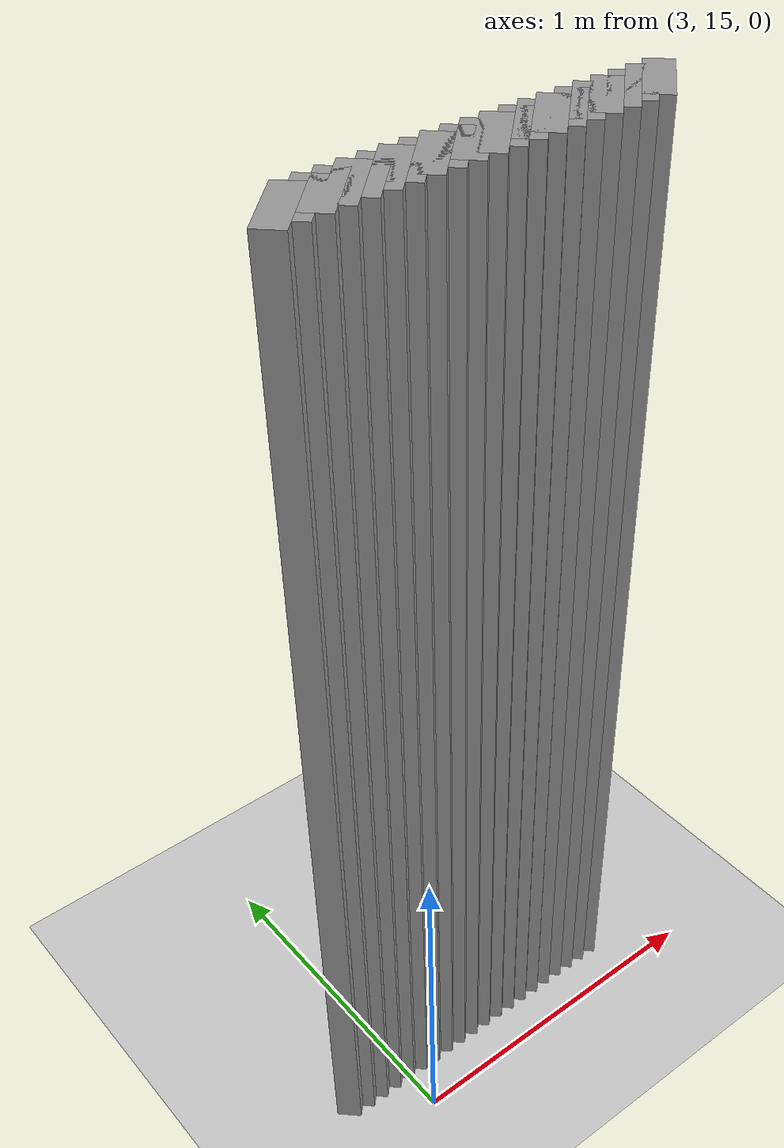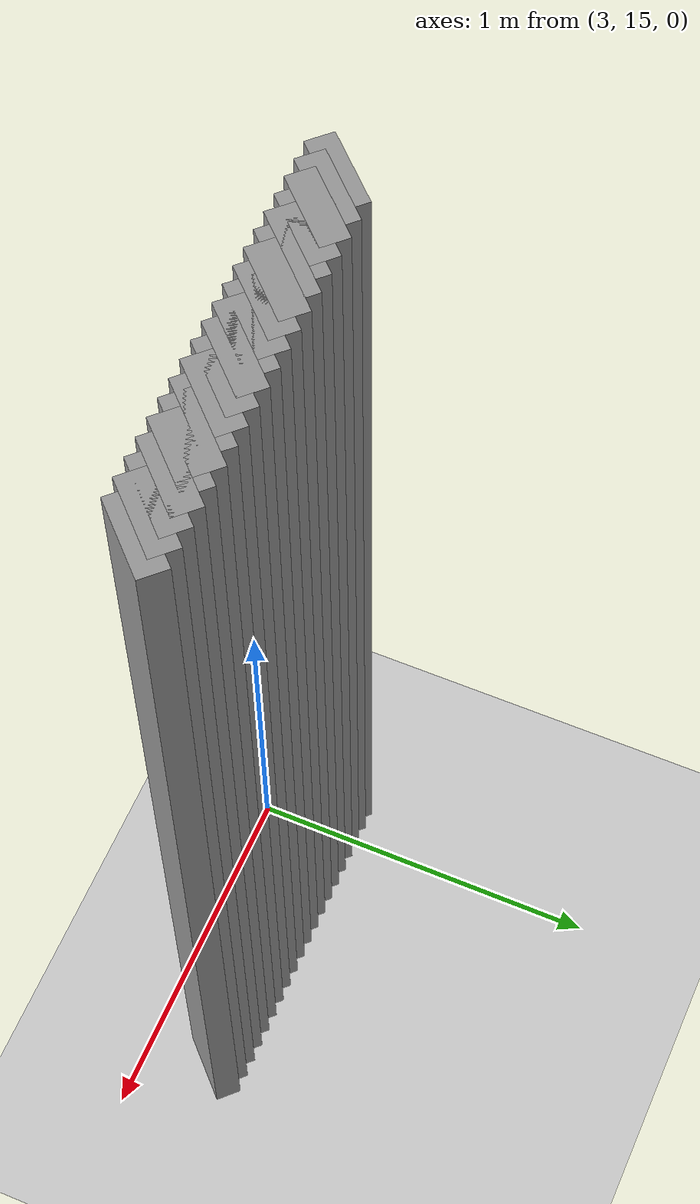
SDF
<sdf version="1.5">
 <world name="default">
  <include><uri>model://ground_plane</uri></include>
  <include><uri>model://sun</uri></include>
  <model name="grey_wall_1477">
   <static>1</static>
   <link name="link">
    <pose>2.85 15.2  1.4 0 0 -0.785398163397</pose>
    <collision name="collision"><geometry><box><size>0.0707106781187 .2  2.8</size></box></geometry></collision>
    <visual name="visual">
     <cast_shadows>0</cast_shadows>
     <geometry><box><size>0.0707106781187 .2  2.8</size></box></geometry>
     <material>
      <script>
       <uri>model://grey_wall/materials/scripts</uri>
       <uri>model://grey_wall/materials/textures</uri>
       <name>vrc/grey_wall</name>
      </script>
     </material>
    </visual>
   </link>
  </model>
  <model name="grey_wall_1478">
   <static>1</static>
   <link name="link">
    <pose>2.9 15.2  1.4 0 0 -0.785398163397</pose>
    <collision name="collision"><geometry><box><size>0.0707106781187 .2  2.8</size></box></geometry></collision>
    <visual name="visual">
     <cast_shadows>0</cast_shadows>
     <geometry><box><size>0.0707106781187 .2  2.8</size></box></geometry>
     <material>
      <script>
       <uri>model://grey_wall/materials/scripts</uri>
       <uri>model://grey_wall/materials/textures</uri>
       <name>vrc/grey_wall</name>
      </script>
     </material>
    </visual>
   </link>
  </model>
  <model name="grey_wall_1479">
   <static>1</static>
   <link name="link">
    <pose>2.95 15.2  1.4 0 0 -0.785398163397</pose>
    <collision name="collision"><geometry><box><size>0.0707106781187 .2  2.8</size></box></geometry></collision>
    <visual name="visual">
     <cast_shadows>0</cast_shadows>
     <geometry><box><size>0.0707106781187 .2  2.8</size></box></geometry>
     <material>
      <script>
       <uri>model://grey_wall/materials/scripts</uri>
       <uri>model://grey_wall/materials/textures</uri>
       <name>vrc/grey_wall</name>
      </script>
     </material>
    </visual>
   </link>
  </model>
  <model name="grey_wall_1480">
   <static>1</static>
   <link name="link">
    <pose>3.0 15.2  1.4 0 0 -0.785398163397</pose>
    <collision name="collision"><geometry><box><size>0.0707106781187 .2  2.8</size></box></geometry></collision>
    <visual name="visual">
     <cast_shadows>0</cast_shadows>
     <geometry><box><size>0.0707106781187 .2  2.8</size></box></geometry>
     <material>
      <script>
       <uri>model://grey_wall/materials/scripts</uri>
       <uri>model://grey_wall/materials/textures</uri>
       <name>vrc/grey_wall</name>
      </script>
     </material>
    </visual>
   </link>
  </model>
  <model name="grey_wall_1481">
   <static>1</static>
   <link name="link">
    <pose>3.05 15.2  1.4 0 0 -0.785398163397</pose>
    <collision name="collision"><geometry><box><size>0.0707106781187 .2  2.8</size></box></geometry></collision>
    <visual name="visual">
     <cast_shadows>0</cast_shadows>
     <geometry><box><size>0.0707106781187 .2  2.8</size></box></geometry>
     <material>
      <script>
       <uri>model://grey_wall/materials/scripts</uri>
       <uri>model://grey_wall/materials/textures</uri>
       <name>vrc/grey_wall</name>
      </script>
     </material>
    </visual>
   </link>
  </model>
  <model name="grey_wall_1482">
   <static>1</static>
   <link name="link">
    <pose>3.1 15.2  1.4 0 0 -0.785398163397</pose>
    <collision name="collision"><geometry><box><size>0.0707106781187 .2  2.8</size></box></geometry></collision>
    <visual name="visual">
     <cast_shadows>0</cast_shadows>
     <geometry><box><size>0.0707106781187 .2  2.8</size></box></geometry>
     <material>
      <script>
       <uri>model://grey_wall/materials/scripts</uri>
       <uri>model://grey_wall/materials/textures</uri>
       <name>vrc/grey_wall</name>
      </script>
     </material>
    </visual>
   </link>
  </model>
  <model name="grey_wall_1483">
   <static>1</static>
   <link name="link">
    <pose>3.15 15.2  1.4 0 0 -0.785398163397</pose>
    <collision name="collision"><geometry><box><size>0.0707106781187 .2  2.8</size></box></geometry></collision>
    <visual name="visual">
     <cast_shadows>0</cast_shadows>
     <geometry><box><size>0.0707106781187 .2  2.8</size></box></geometry>
     <material>
      <script>
       <uri>model://grey_wall/materials/scripts</uri>
       <uri>model://grey_wall/materials/textures</uri>
       <name>vrc/grey_wall</name>
      </script>
     </material>
    </visual>
   </link>
  </model>
  <model name="grey_wall_1484">
   <static>1</static>
   <link name="link">
    <pose>3.2 15.2  1.4 0 0 -0.785398163397</pose>
    <collision name="collision"><geometry><box><size>0.0707106781187 .2  2.8</size></box></geometry></collision>
    <visual name="visual">
     <cast_shadows>0</cast_shadows>
     <geometry><box><size>0.0707106781187 .2  2.8</size></box></geometry>
     <material>
      <script>
       <uri>model://grey_wall/materials/scripts</uri>
       <uri>model://grey_wall/materials/textures</uri>
       <name>vrc/grey_wall</name>
      </script>
     </material>
    </visual>
   </link>
  </model>
  <model name="grey_wall_1485">
   <static>1</static>
   <link name="link">
    <pose>3.25 15.2  1.4 0 0 -0.785398163397</pose>
    <collision name="collision"><geometry><box><size>0.0707106781187 .2  2.8</size></box></geometry></collision>
    <visual name="visual">
     <cast_shadows>0</cast_shadows>
     <geometry><box><size>0.0707106781187 .2  2.8</size></box></geometry>
     <material>
      <script>
       <uri>model://grey_wall/materials/scripts</uri>
       <uri>model://grey_wall/materials/textures</uri>
       <name>vrc/grey_wall</name>
      </script>
     </material>
    </visual>
   </link>
  </model>
  <model name="grey_wall_1486">
   <static>1</static>
   <link name="link">
    <pose>3.3 15.2  1.4 0 0 -0.785398163397</pose>
    <collision name="collision"><geometry><box><size>0.0707106781187 .2  2.8</size></box></geometry></collision>
    <visual name="visual">
     <cast_shadows>0</cast_shadows>
     <geometry><box><size>0.0707106781187 .2  2.8</size></box></geometry>
     <material>
      <script>
       <uri>model://grey_wall/materials/scripts</uri>
       <uri>model://grey_wall/materials/textures</uri>
       <name>vrc/grey_wall</name>
      </script>
     </material>
    </visual>
   </link>
  </model>
  <model name="grey_wall_1487">
   <static>1</static>
   <link name="link">
    <pose>3.35 15.2  1.4 0 0 -0.785398163397</pose>
    <collision name="collision"><geometry><box><size>0.0707106781187 .2  2.8</size></box></geometry></collision>
    <visual name="visual">
     <cast_shadows>0</cast_shadows>
     <geometry><box><size>0.0707106781187 .2  2.8</size></box></geometry>
     <material>
      <script>
       <uri>model://grey_wall/materials/scripts</uri>
       <uri>model://grey_wall/materials/textures</uri>
       <name>vrc/grey_wall</name>
      </script>
     </material>
    </visual>
   </link>
  </model>
  <model name="grey_wall_1488">
   <static>1</static>
   <link name="link">
    <pose>3.4 15.2  1.4 0 0 -0.785398163397</pose>
    <collision name="collision"><geometry><box><size>0.0707106781187 .2  2.8</size></box></geometry></collision>
    <visual name="visual">
     <cast_shadows>0</cast_shadows>
     <geometry><box><size>0.0707106781187 .2  2.8</size></box></geometry>
     <material>
      <script>
       <uri>model://grey_wall/materials/scripts</uri>
       <uri>model://grey_wall/materials/textures</uri>
       <name>vrc/grey_wall</name>
      </script>
     </material>
    </visual>
   </link>
  </model>
  <model name="grey_wall_1489">
   <static>1</static>
   <link name="link">
    <pose>3.45 15.2  1.4 0 0 -0.785398163397</pose>
    <collision name="collision"><geometry><box><size>0.0707106781187 .2  2.8</size></box></geometry></collision>
    <visual name="visual">
     <cast_shadows>0</cast_shadows>
     <geometry><box><size>0.0707106781187 .2  2.8</size></box></geometry>
     <material>
      <script>
       <uri>model://grey_wall/materials/scripts</uri>
       <uri>model://grey_wall/materials/textures</uri>
       <name>vrc/grey_wall</name>
      </script>
     </material>
    </visual>
   </link>
  </model>
  <model name="grey_wall_1490">
   <static>1</static>
   <link name="link">
    <pose>3.5 15.2  1.4 0 0 -0.785398163397</pose>
    <collision name="collision"><geometry><box><size>0.0707106781187 .2  2.8</size></box></geometry></collision>
    <visual name="visual">
     <cast_shadows>0</cast_shadows>
     <geometry><box><size>0.0707106781187 .2  2.8</size></box></geometry>
     <material>
      <script>
       <uri>model://grey_wall/materials/scripts</uri>
       <uri>model://grey_wall/materials/textures</uri>
       <name>vrc/grey_wall</name>
      </script>
     </material>
    </visual>
   </link>
  </model>
  <model name="grey_wall_1491">
   <static>1</static>
   <link name="link">
    <pose>3.55 15.2  1.4 0 0 -0.785398163397</pose>
    <collision name="collision"><geometry><box><size>0.0707106781187 .2  2.8</size></box></geometry></collision>
    <visual name="visual">
     <cast_shadows>0</cast_shadows>
     <geometry><box><size>0.0707106781187 .2  2.8</size></box></geometry>
     <material>
      <script>
       <uri>model://grey_wall/materials/scripts</uri>
       <uri>model://grey_wall/materials/textures</uri>
       <name>vrc/grey_wall</name>
      </script>
     </material>
    </visual>
   </link>
  </model>
  <model name="grey_wall_1492">
   <static>1</static>
   <link name="link">
    <pose>3.6 15.2  1.4 0 0 -0.785398163397</pose>
    <collision name="collision"><geometry><box><size>0.0707106781187 .2  2.8</size></box></geometry></collision>
    <visual name="visual">
     <cast_shadows>0</cast_shadows>
     <geometry><box><size>0.0707106781187 .2  2.8</size></box></geometry>
     <material>
      <script>
       <uri>model://grey_wall/materials/scripts</uri>
       <uri>model://grey_wall/materials/textures</uri>
       <name>vrc/grey_wall</name>
      </script>
     </material>
    </visual>
   </link>
  </model>
  <model name="grey_wall_1493">
   <static>1</static>
   <link name="link">
    <pose>3.65 15.2  1.4 0 0 -0.785398163397</pose>
    <collision name="collision"><geometry><box><size>0.0707106781187 .2  2.8</size></box></geometry></collision>
    <visual name="visual">
     <cast_shadows>0</cast_shadows>
     <geometry><box><size>0.0707106781187 .2  2.8</size></box></geometry>
     <material>
      <script>
       <uri>model://grey_wall/materials/scripts</uri>
       <uri>model://grey_wall/materials/textures</uri>
       <name>vrc/grey_wall</name>
      </script>
     </material>
    </visual>
   </link>
  </model>
  <model name="grey_wall_1494">
   <static>1</static>
   <link name="link">
    <pose>3.7 15.2  1.4 0 0 -0.785398163397</pose>
    <collision name="collision"><geometry><box><size>0.0707106781187 .2  2.8</size></box></geometry></collision>
    <visual name="visual">
     <cast_shadows>0</cast_shadows>
     <geometry><box><size>0.0707106781187 .2  2.8</size></box></geometry>
     <material>
      <script>
       <uri>model://grey_wall/materials/scripts</uri>
       <uri>model://grey_wall/materials/textures</uri>
       <name>vrc/grey_wall</name>
      </script>
     </material>
    </visual>
   </link>
  </model>
  <model name="grey_wall_1495">
   <static>1</static>
   <link name="link">
    <pose>3.75 15.2  1.4 0 0 -0.785398163397</pose>
    <collision name="collision"><geometry><box><size>0.0707106781187 .2  2.8</size></box></geometry></collision>
    <visual name="visual">
     <cast_shadows>0</cast_shadows>
     <geometry><box><size>0.0707106781187 .2  2.8</size></box></geometry>
     <material>
      <script>
       <uri>model://grey_wall/materials/scripts</uri>
       <uri>model://grey_wall/materials/textures</uri>
       <name>vrc/grey_wall</name>
      </script>
     </material>
    </visual>
   </link>
  </model>
  <model name="grey_wall_1496">
   <static>1</static>
   <link name="link">
    <pose>3.8 15.2  1.4 0 0 -0.785398163397</pose>
    <collision name="collision"><geometry><box><size>0.0707106781187 .2  2.8</size></box></geometry></collision>
    <visual name="visual">
     <cast_shadows>0</cast_shadows>
     <geometry><box><size>0.0707106781187 .2  2.8</size></box></geometry>
     <material>
      <script>
       <uri>model://grey_wall/materials/scripts</uri>
       <uri>model://grey_wall/materials/textures</uri>
       <name>vrc/grey_wall</name>
      </script>
     </material>
    </visual>
   </link>
  </model>
 </world>
</sdf>
